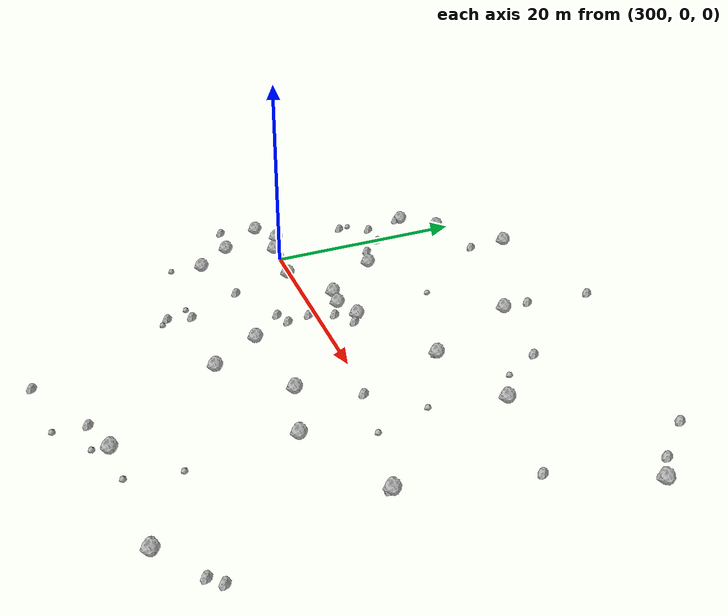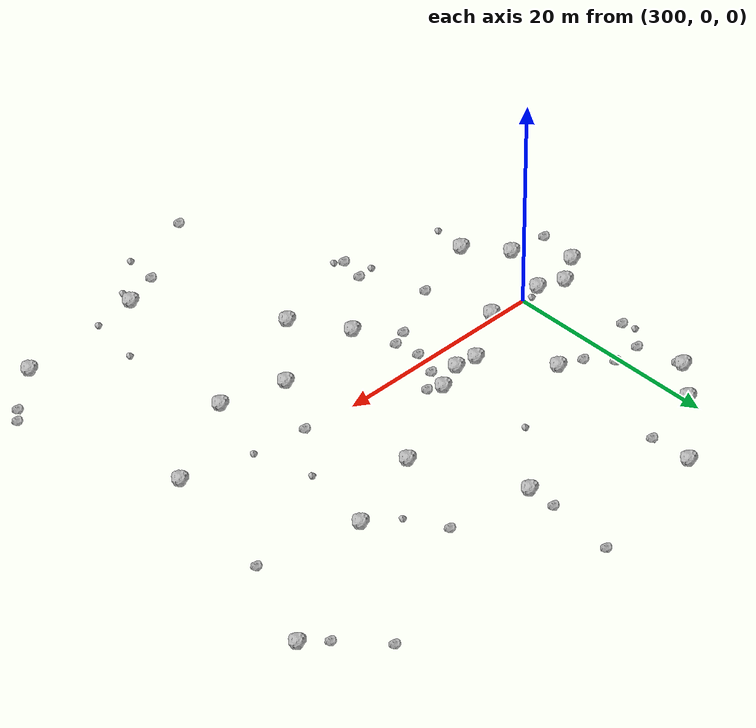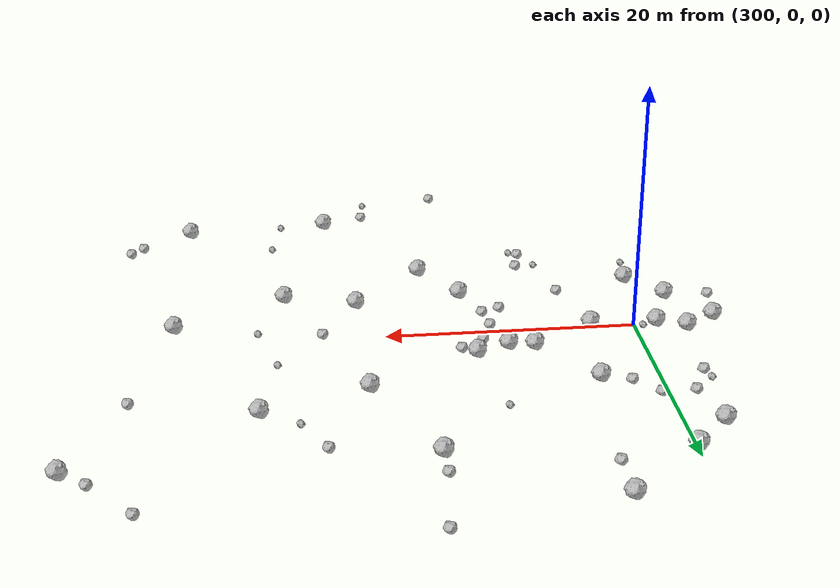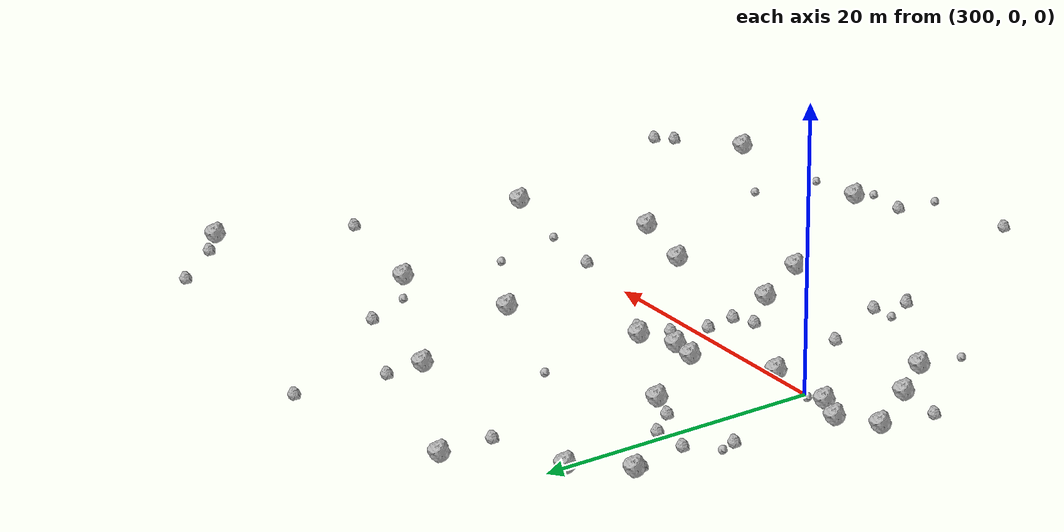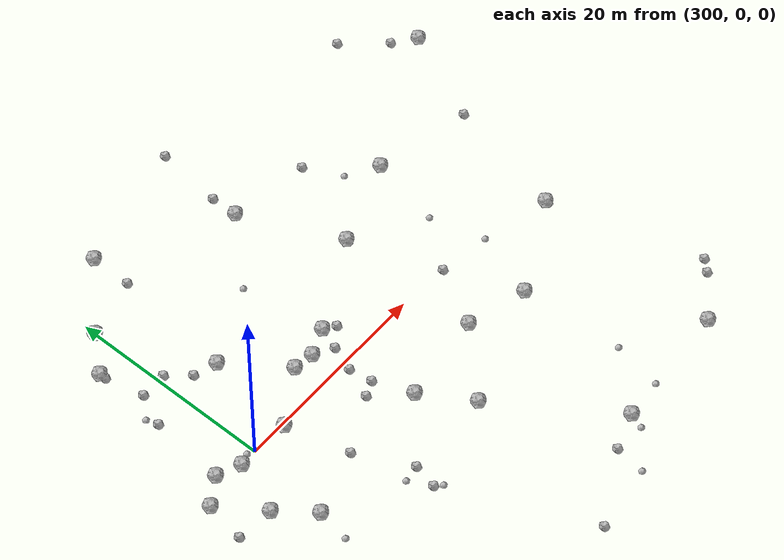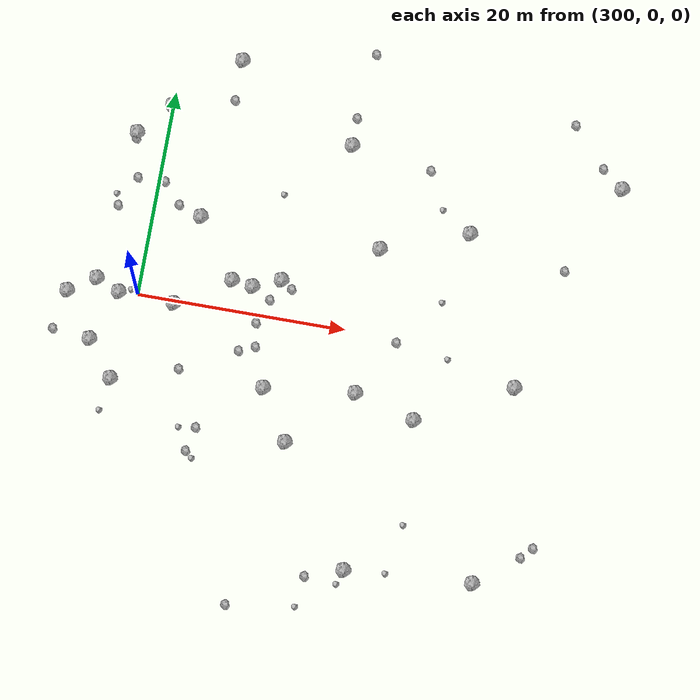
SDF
<sdf version="1.6">
 <world name="default">
  <include><uri>model://sun</uri></include>
  <model name="rock1_8_3">
   <include><uri>model://rock1</uri><pose>313.22661068791183 3.6545234374359765 0.5 0 0 0</pose></include>
  </model>
  <model name="rock1_8_4">
   <include><uri>model://rock1</uri><pose>304.5588386357246 8.40568351266375 0.5 0 0 0</pose></include>
  </model>
  <model name="rock1_8_5">
   <include><uri>model://rock1</uri><pose>297.0820696698455 15.476133608333377 0.5 0 0 0</pose></include>
  </model>
  <model name="rock1_8_6">
   <include><uri>model://rock1</uri><pose>321.9212765108374 8.259782908408063 0.5 0 0 0</pose></include>
  </model>
  <model name="rock1_8_7">
   <include><uri>model://rock1</uri><pose>295.8929291134461 0.8304165985594665 0.5 0 0 0</pose></include>
  </model>
  <model name="rock1_8_8">
   <include><uri>model://rock1</uri><pose>336.76291363782957 -2.748733051453783 0.5 0 0 0</pose></include>
  </model>
  <model name="rock1_8_9">
   <include><uri>model://rock1</uri><pose>335.9484199879313 -21.795783922181972 0.5 0 0 0</pose></include>
  </model>
  <model name="rock1_8_10">
   <include><uri>model://rock1</uri><pose>296.28584401888054 -5.065958980028004 0.5 0 0 0</pose></include>
  </model>
  <model name="rock1_8_11">
   <include><uri>model://rock1</uri><pose>343.69073728354545 18.01305381365154 0.5 0 0 0</pose></include>
  </model>
  <model name="rock1_8_12">
   <include><uri>model://rock1</uri><pose>317.5831474213787 17.773757934132867 0.5 0 0 0</pose></include>
  </model>
  <model name="rock1_8_13">
   <include><uri>model://rock1</uri><pose>298.92225104951126 -8.468189833774012 0.5 0 0 0</pose></include>
  </model>
  <model name="rock1_8_14">
   <include><uri>model://rock1</uri><pose>323.8482745030283 -22.653695413369153 0.5 0 0 0</pose></include>
  </model>
  <model name="rock1_8_15">
   <include><uri>model://rock1</uri><pose>299.9374566574946 18.68342768870724 0.5 0 0 0</pose></include>
  </model>
  <model name="rock1_8_16">
   <include><uri>model://rock1</uri><pose>303.5198022524389 -0.32963256027026944 0.5 0 0 0</pose></include>
  </model>
  <model name="rock1_8_17">
   <include><uri>model://rock1</uri><pose>305.7630181150282 24.186579802117848 0.5 0 0 0</pose></include>
  </model>
  <model name="rock1_8_18">
   <include><uri>model://rock1</uri><pose>310.6099398979996 2.5745691390875223 0.5 0 0 0</pose></include>
  </model>
  <model name="rock1_8_19">
   <include><uri>model://rock1</uri><pose>322.0151714176364 -5.848206062630307 0.5 0 0 0</pose></include>
  </model>
  <model name="rock1_8_20">
   <include><uri>model://rock1</uri><pose>327.875878976431 -7.465227829946599 0.5 0 0 0</pose></include>
  </model>
  <model name="rock1_8_21">
   <include><uri>model://rock1</uri><pose>298.18874516613135 -0.13540042738431524 0.5 0 0 0</pose></include>
  </model>
  <model name="rock1_8_22">
   <include><uri>model://rock1</uri><pose>313.34283045193786 -6.866344613763943 0.5 0 0 0</pose></include>
  </model>
  <model name="rock1_8_23">
   <include><uri>model://rock1</uri><pose>293.3414178421761 -0.8386958715545667 0.5 0 0 0</pose></include>
  </model>
  <model name="rock1_8_24">
   <include><uri>model://rock1</uri><pose>316.2868402472241 -11.628837471619185 0.5 0 0 0</pose></include>
  </model>
  <model name="rock1_8_25">
   <include><uri>model://rock1</uri><pose>330.1418682567176 11.215315031001921 0.5 0 0 0</pose></include>
  </model>
  <model name="rock1_8_26">
   <include><uri>model://rock1</uri><pose>308.5925041361701 2.8530443414563464 0.5 0 0 0</pose></include>
  </model>
  <model name="rock2_8_0">
   <include><uri>model://rock2</uri><pose>305.1288604240127 -6.461448777213697 0.3 0 0 0</pose></include>
  </model>
  <model name="rock2_8_1">
   <include><uri>model://rock2</uri><pose>341.6056959352138 19.678226905230495 0.3 0 0 0</pose></include>
  </model>
  <model name="rock2_8_2">
   <include><uri>model://rock2</uri><pose>317.5518098361568 20.495876224031015 0.3 0 0 0</pose></include>
  </model>
  <model name="rock2_8_3">
   <include><uri>model://rock2</uri><pose>339.5831068580284 9.185475375220662 0.3 0 0 0</pose></include>
  </model>
  <model name="rock2_8_4">
   <include><uri>model://rock2</uri><pose>302.30877676822047 9.195772660308386 0.3 0 0 0</pose></include>
  </model>
  <model name="rock2_8_5">
   <include><uri>model://rock2</uri><pose>300.56463922621793 11.200642154157805 0.3 0 0 0</pose></include>
  </model>
  <model name="rock2_8_6">
   <include><uri>model://rock2</uri><pose>318.3067142688024 27.021706731018554 0.3 0 0 0</pose></include>
  </model>
  <model name="rock2_8_7">
   <include><uri>model://rock2</uri><pose>320.3045931497776 -23.852296544332766 0.3 0 0 0</pose></include>
  </model>
  <model name="rock2_8_8">
   <include><uri>model://rock2</uri><pose>296.57248884911024 8.162443395802661 0.3 0 0 0</pose></include>
  </model>
  <model name="rock2_8_9">
   <include><uri>model://rock2</uri><pose>324.9886475591819 -0.40343197082003 0.3 0 0 0</pose></include>
  </model>
  <model name="rock2_8_10">
   <include><uri>model://rock2</uri><pose>313.4739091720267 -27.756305396153127 0.3 0 0 0</pose></include>
  </model>
  <model name="rock2_8_11">
   <include><uri>model://rock2</uri><pose>297.09071870581266 14.900686185245227 0.3 0 0 0</pose></include>
  </model>
  <model name="rock2_8_12">
   <include><uri>model://rock2</uri><pose>297.9416948996302 11.15432951665359 0.3 0 0 0</pose></include>
  </model>
  <model name="rock2_8_13">
   <include><uri>model://rock2</uri><pose>310.39704551100533 -3.757484913081967 0.3 0 0 0</pose></include>
  </model>
  <model name="rock2_8_14">
   <include><uri>model://rock2</uri><pose>340.9918196274748 -17.543414786394145 0.3 0 0 0</pose></include>
  </model>
  <model name="rock2_8_15">
   <include><uri>model://rock2</uri><pose>339.9803505098221 -18.623406768730938 0.3 0 0 0</pose></include>
  </model>
  <model name="rock2_8_16">
   <include><uri>model://rock2</uri><pose>312.4526921121265 1.58358205835669 0.3 0 0 0</pose></include>
  </model>
  <model name="rock2_8_17">
   <include><uri>model://rock2</uri><pose>338.3156625084905 23.443296600444313 0.3 0 0 0</pose></include>
  </model>
  <model name="rock2_8_18">
   <include><uri>model://rock2</uri><pose>314.32021690484845 2.9599600140904343 0.3 0 0 0</pose></include>
  </model>
  <model name="rock2_8_19">
   <include><uri>model://rock2</uri><pose>305.73137811392525 20.205361708586118 0.3 0 0 0</pose></include>
  </model>
  <model name="rock2_8_20">
   <include><uri>model://rock2</uri><pose>311.90508102356625 -3.1105022167158047 0.3 0 0 0</pose></include>
  </model>
  <model name="rock2_8_21">
   <include><uri>model://rock2</uri><pose>307.7245966189621 -11.70969555109 0.3 0 0 0</pose></include>
  </model>
  <model name="rock2_8_22">
   <include><uri>model://rock2</uri><pose>292.6485883589298 -4.677359733158173 0.3 0 0 0</pose></include>
  </model>
  <model name="rock2_8_23">
   <include><uri>model://rock2</uri><pose>325.40448101768135 16.635771095230538 0.3 0 0 0</pose></include>
  </model>
  <model name="rock2_8_24">
   <include><uri>model://rock2</uri><pose>307.19157851106996 -14.061686918301836 0.3 0 0 0</pose></include>
  </model>
  <model name="rock2_8_25">
   <include><uri>model://rock2</uri><pose>336.76474814123526 -2.9638704665585145 0.3 0 0 0</pose></include>
  </model>
  <model name="rock2_8_26">
   <include><uri>model://rock2</uri><pose>311.5667188005373 -0.8339676621991359 0.3 0 0 0</pose></include>
  </model>
  <model name="rock3_8_0">
   <include><uri>model://rock3</uri><pose>327.7169841209842 -22.314547396898256 0.2 0 0 0</pose></include>
  </model>
  <model name="rock3_8_1">
   <include><uri>model://rock3</uri><pose>299.28521592578153 0.2896857347090034 0.2 0 0 0</pose></include>
  </model>
  <model name="rock3_8_2">
   <include><uri>model://rock3</uri><pose>298.3934495924427 -11.662234536782265 0.2 0 0 0</pose></include>
  </model>
  <model name="rock3_8_3">
   <include><uri>model://rock3</uri><pose>296.21432604849684 9.269319050534975 0.2 0 0 0</pose></include>
  </model>
  <model name="rock3_8_4">
   <include><uri>model://rock3</uri><pose>306.06972998422856 -11.955482991851895 0.2 0 0 0</pose></include>
  </model>
  <model name="rock3_8_5">
   <include><uri>model://rock3</uri><pose>328.6071723406202 4.154109322332765 0.2 0 0 0</pose></include>
  </model>
  <model name="rock3_8_6">
   <include><uri>model://rock3</uri><pose>323.34640185859814 -24.096632292682642 0.2 0 0 0</pose></include>
  </model>
  <model name="rock3_8_7">
   <include><uri>model://rock3</uri><pose>311.98181429313064 11.898951994707815 0.2 0 0 0</pose></include>
  </model>
  <model name="rock3_8_8">
   <include><uri>model://rock3</uri><pose>319.90001068627726 -26.859084904805105 0.2 0 0 0</pose></include>
  </model>
  <model name="rock3_8_9">
   <include><uri>model://rock3</uri><pose>307.82755982615214 -14.684231700067887 0.2 0 0 0</pose></include>
  </model>
  <model name="rock3_8_10">
   <include><uri>model://rock3</uri><pose>328.59680270862384 -17.50790827744393 0.2 0 0 0</pose></include>
  </model>
  <model name="rock3_8_11">
   <include><uri>model://rock3</uri><pose>327.1695284765395 13.044149309441053 0.2 0 0 0</pose></include>
  </model>
  <model name="rock3_8_12">
   <include><uri>model://rock3</uri><pose>330.04621621240017 -1.1621835200362725 0.2 0 0 0</pose></include>
  </model>
  <model name="rock3_8_13">
   <include><uri>model://rock3</uri><pose>321.92549136629134 7.908687288705295 0.2 0 0 0</pose></include>
  </model>
 </world>
</sdf>
